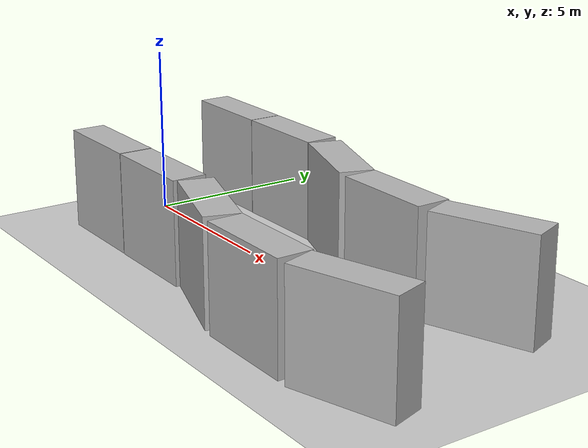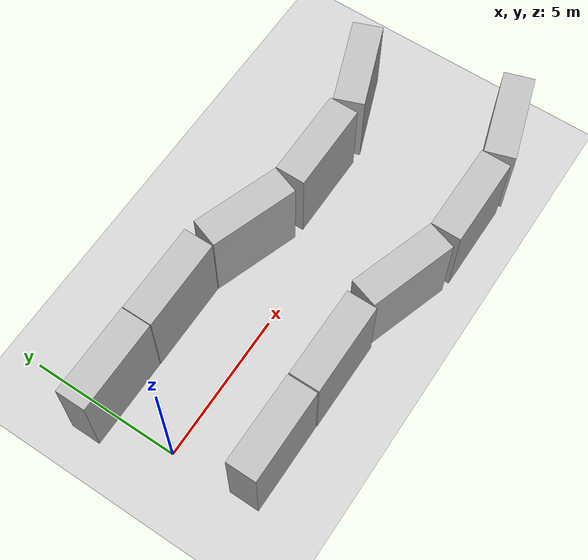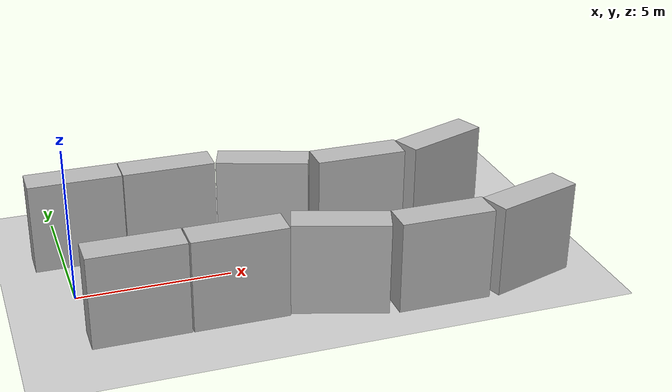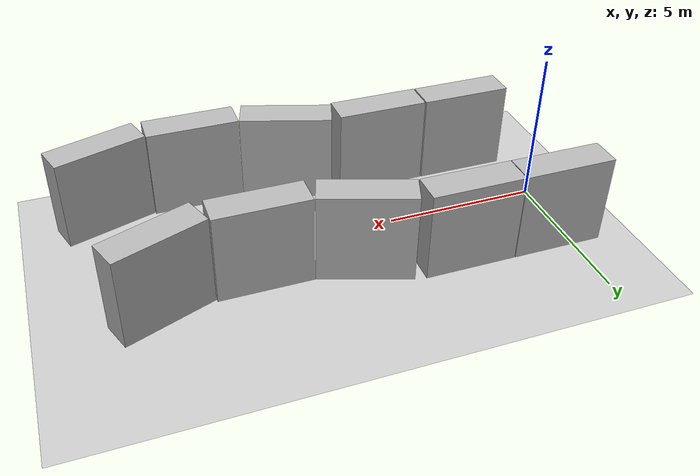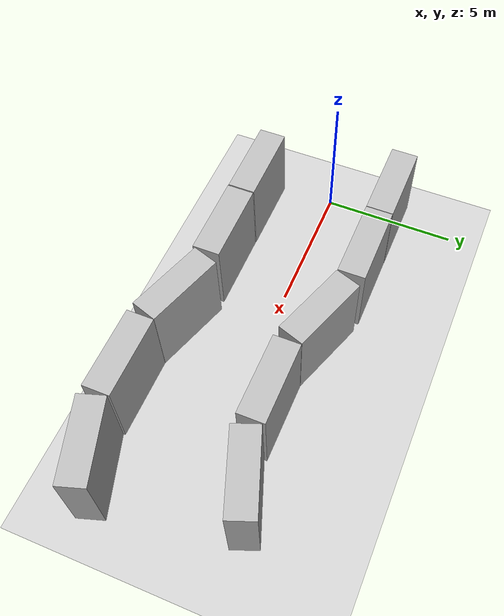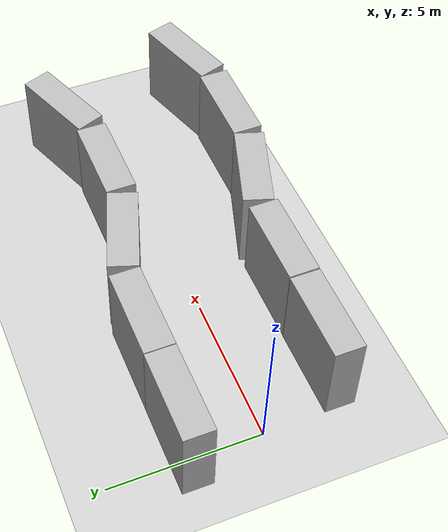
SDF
<sdf version="1.7">
 <world name="default">
  <light name="sun" type="directional">
   <pose>0 0 10 0 -0 0</pose>
   <diffuse>0.8 0.8 0.8 1</diffuse>
   <specular>0.2 0.2 0.2 1</specular>
   <attenuation>
    <range>1000</range>
    <constant>0.9</constant>
    <linear>0.01</linear>
    <quadratic>0.001</quadratic>
   </attenuation>
   <direction>-0.5 0.1 -0.9</direction>
   <spot><inner_angle>0</inner_angle><outer_angle>0</outer_angle><falloff>0</falloff></spot>
  </light>
  <model name="ground_plane">
   <static>1</static>
   <link name="link">
    <collision name="collision">
     <geometry><plane><normal>0 0 1</normal><size>100 100</size></plane></geometry>
     <surface>
      <contact><collide_bitmask>65535</collide_bitmask></contact>
      <friction><ode><mu>100</mu><mu2>50</mu2></ode></friction>
     </surface>
    </collision>
    <visual name="visual">
     <cast_shadows>0</cast_shadows>
     <geometry><plane><normal>0 0 1</normal><size>100 100</size></plane></geometry>
     <material>
      <script><uri>file://media/materials/scripts/gazebo.material</uri><name>Gazebo/Grey</name></script>
     </material>
    </visual>
   </link>
  </model>
  <gravity>0 0 -9.8</gravity>
  <magnetic_field>6e-06 2.3e-05 -4.2e-05</magnetic_field>
  <atmosphere type="adiabatic"/>
  <physics type="ode">
   <max_step_size>0.001</max_step_size>
   <real_time_factor>1</real_time_factor>
   <real_time_update_rate>1000</real_time_update_rate>
  </physics>
  <scene><ambient>0.4 0.4 0.4 1</ambient><background>0.7 0.7 0.7 1</background><shadows>1</shadows></scene>
  <spherical_coordinates>
   <surface_model>EARTH_WGS84</surface_model>
   <latitude_deg>0</latitude_deg>
   <longitude_deg>0</longitude_deg>
   <elevation>0</elevation>
   <heading_deg>0</heading_deg>
  </spherical_coordinates>
  <model name="brick_box_3x1x3">
   <static>1</static>
   <link name="chassis">
    <pose>0 0 1.5 0 -0 0</pose>
    <collision name="collision"><geometry><box><size>3 1 3</size></box></geometry></collision>
    <visual name="visual">
     <geometry><mesh><uri>model://brick_box_3x1x3/meshes/simple_box.dae</uri><scale>3 1 3</scale></mesh></geometry>
     <material>
      <script>
       <uri>model://brick_box_3x1x3/materials/scripts</uri>
       <uri>model://brick_box_3x1x3/materials/textures</uri>
       <name>BrickBox/Diffuse</name>
      </script>
     </material>
    </visual>
   </link>
   <pose>0.561371 2.48078 0 0 -0 0</pose>
  </model>
  <model name="brick_box_3x1x3_0">
   <static>1</static>
   <link name="chassis">
    <pose>0 0 1.5 0 -0 0</pose>
    <collision name="collision"><geometry><box><size>3 1 3</size></box></geometry></collision>
    <visual name="visual">
     <geometry><mesh><uri>model://brick_box_3x1x3/meshes/simple_box.dae</uri><scale>3 1 3</scale></mesh></geometry>
     <material>
      <script>
       <uri>model://brick_box_3x1x3/materials/scripts</uri>
       <uri>model://brick_box_3x1x3/materials/textures</uri>
       <name>BrickBox/Diffuse</name>
      </script>
     </material>
    </visual>
   </link>
   <pose>3.58365 2.47504 0 0 -0 0</pose>
  </model>
  <model name="brick_box_3x1x3_1">
   <static>1</static>
   <link name="chassis">
    <pose>0 0 1.5 0 -0 0</pose>
    <collision name="collision"><geometry><box><size>3 1 3</size></box></geometry></collision>
    <visual name="visual">
     <geometry><mesh><uri>model://brick_box_3x1x3/meshes/simple_box.dae</uri><scale>3 1 3</scale></mesh></geometry>
     <material>
      <script>
       <uri>model://brick_box_3x1x3/materials/scripts</uri>
       <uri>model://brick_box_3x1x3/materials/textures</uri>
       <name>BrickBox/Diffuse</name>
      </script>
     </material>
    </visual>
   </link>
   <pose>1.50864 -2.53421 0 0 -0 0</pose>
  </model>
  <model name="brick_box_3x1x3_2">
   <static>1</static>
   <link name="chassis">
    <pose>0 0 1.5 0 -0 0</pose>
    <collision name="collision"><geometry><box><size>3 1 3</size></box></geometry></collision>
    <visual name="visual">
     <geometry><mesh><uri>model://brick_box_3x1x3/meshes/simple_box.dae</uri><scale>3 1 3</scale></mesh></geometry>
     <material>
      <script>
       <uri>model://brick_box_3x1x3/materials/scripts</uri>
       <uri>model://brick_box_3x1x3/materials/textures</uri>
       <name>BrickBox/Diffuse</name>
      </script>
     </material>
    </visual>
   </link>
   <pose>4.55267 -2.5453 0 0 -0 0</pose>
  </model>
  <model name="brick_box_3x1x3_3">
   <static>1</static>
   <link name="chassis">
    <pose>0 0 1.5 0 -0 0</pose>
    <collision name="collision"><geometry><box><size>3 1 3</size></box></geometry></collision>
    <visual name="visual">
     <geometry><mesh><uri>model://brick_box_3x1x3/meshes/simple_box.dae</uri><scale>3 1 3</scale></mesh></geometry>
     <material>
      <script>
       <uri>model://brick_box_3x1x3/materials/scripts</uri>
       <uri>model://brick_box_3x1x3/materials/textures</uri>
       <name>BrickBox/Diffuse</name>
      </script>
     </material>
    </visual>
   </link>
   <pose>6.69245 1.94356 -0 0 0 -0.333634</pose>
  </model>
  <model name="brick_box_3x1x3_4">
   <static>1</static>
   <link name="chassis">
    <pose>0 0 1.5 0 -0 0</pose>
    <collision name="collision"><geometry><box><size>3 1 3</size></box></geometry></collision>
    <visual name="visual">
     <geometry><mesh><uri>model://brick_box_3x1x3/meshes/simple_box.dae</uri><scale>3 1 3</scale></mesh></geometry>
     <material>
      <script>
       <uri>model://brick_box_3x1x3/materials/scripts</uri>
       <uri>model://brick_box_3x1x3/materials/textures</uri>
       <name>BrickBox/Diffuse</name>
      </script>
     </material>
    </visual>
   </link>
   <pose>7.66434 -2.92815 0 0 0 -0.314709</pose>
  </model>
  <model name="brick_box_3x1x3_5">
   <static>1</static>
   <link name="chassis">
    <pose>0 0 1.5 0 -0 0</pose>
    <collision name="collision"><geometry><box><size>3 1 3</size></box></geometry></collision>
    <visual name="visual">
     <geometry><mesh><uri>model://brick_box_3x1x3/meshes/simple_box.dae</uri><scale>3 1 3</scale></mesh></geometry>
     <material>
      <script>
       <uri>model://brick_box_3x1x3/materials/scripts</uri>
       <uri>model://brick_box_3x1x3/materials/textures</uri>
       <name>BrickBox/Diffuse</name>
      </script>
     </material>
    </visual>
   </link>
   <pose>9.79895 1.42176 0 0 -0 0</pose>
  </model>
  <model name="brick_box_3x1x3_6">
   <static>1</static>
   <link name="chassis">
    <pose>0 0 1.5 0 -0 0</pose>
    <collision name="collision"><geometry><box><size>3 1 3</size></box></geometry></collision>
    <visual name="visual">
     <geometry><mesh><uri>model://brick_box_3x1x3/meshes/simple_box.dae</uri><scale>3 1 3</scale></mesh></geometry>
     <material>
      <script>
       <uri>model://brick_box_3x1x3/materials/scripts</uri>
       <uri>model://brick_box_3x1x3/materials/textures</uri>
       <name>BrickBox/Diffuse</name>
      </script>
     </material>
    </visual>
   </link>
   <pose>10.7513 -3.42049 0 0 -0 0</pose>
  </model>
  <model name="brick_box_3x1x3_7">
   <static>1</static>
   <link name="chassis">
    <pose>0 0 1.5 0 -0 0</pose>
    <collision name="collision"><geometry><box><size>3 1 3</size></box></geometry></collision>
    <visual name="visual">
     <geometry><mesh><uri>model://brick_box_3x1x3/meshes/simple_box.dae</uri><scale>3 1 3</scale></mesh></geometry>
     <material>
      <script>
       <uri>model://brick_box_3x1x3/materials/scripts</uri>
       <uri>model://brick_box_3x1x3/materials/textures</uri>
       <name>BrickBox/Diffuse</name>
      </script>
     </material>
    </visual>
   </link>
   <pose>13.8422 -3.01358 0 0 -0 0.306729</pose>
  </model>
  <model name="brick_box_3x1x3_8">
   <static>1</static>
   <link name="chassis">
    <pose>0 0 1.5 0 -0 0</pose>
    <collision name="collision"><geometry><box><size>3 1 3</size></box></geometry></collision>
    <visual name="visual">
     <geometry><mesh><uri>model://brick_box_3x1x3/meshes/simple_box.dae</uri><scale>3 1 3</scale></mesh></geometry>
     <material>
      <script>
       <uri>model://brick_box_3x1x3/materials/scripts</uri>
       <uri>model://brick_box_3x1x3/materials/textures</uri>
       <name>BrickBox/Diffuse</name>
      </script>
     </material>
    </visual>
   </link>
   <pose>12.9037 1.89346 0 0 -0 0.360016</pose>
  </model>
 </world>
</sdf>
